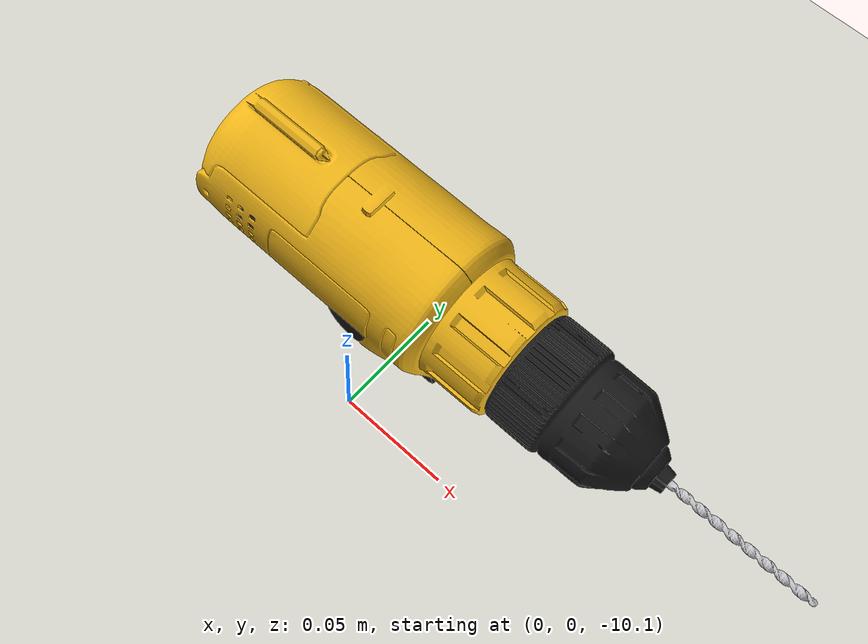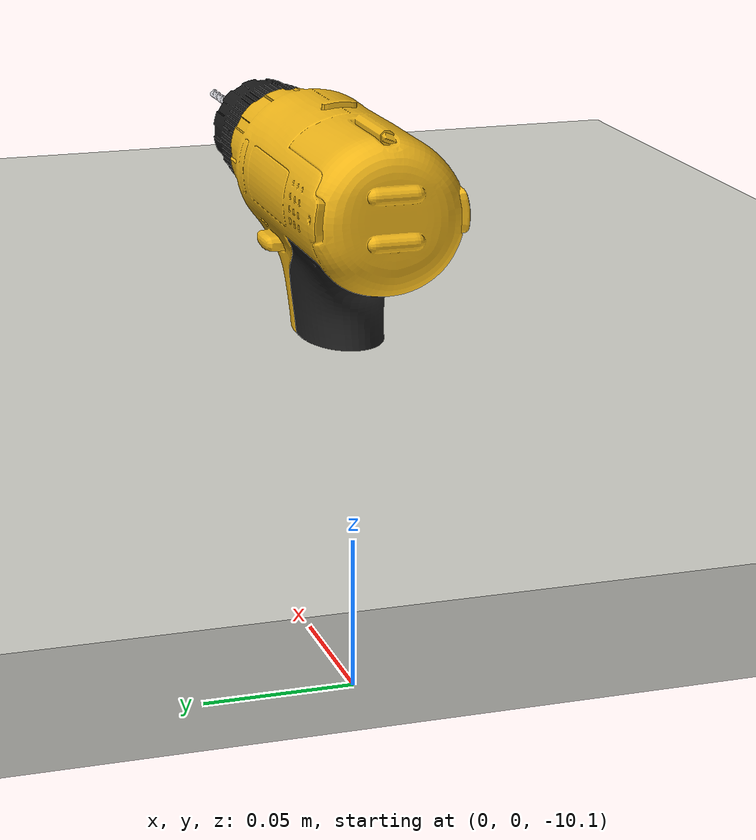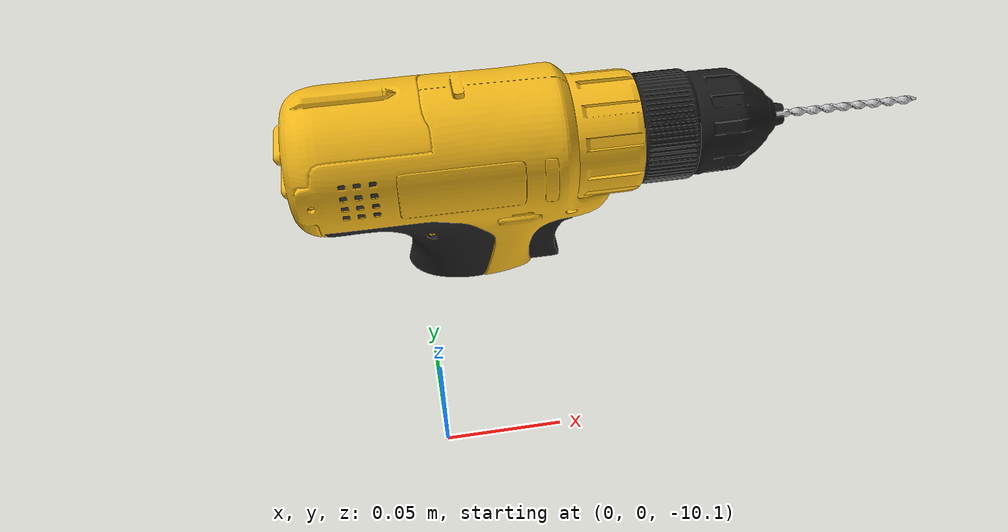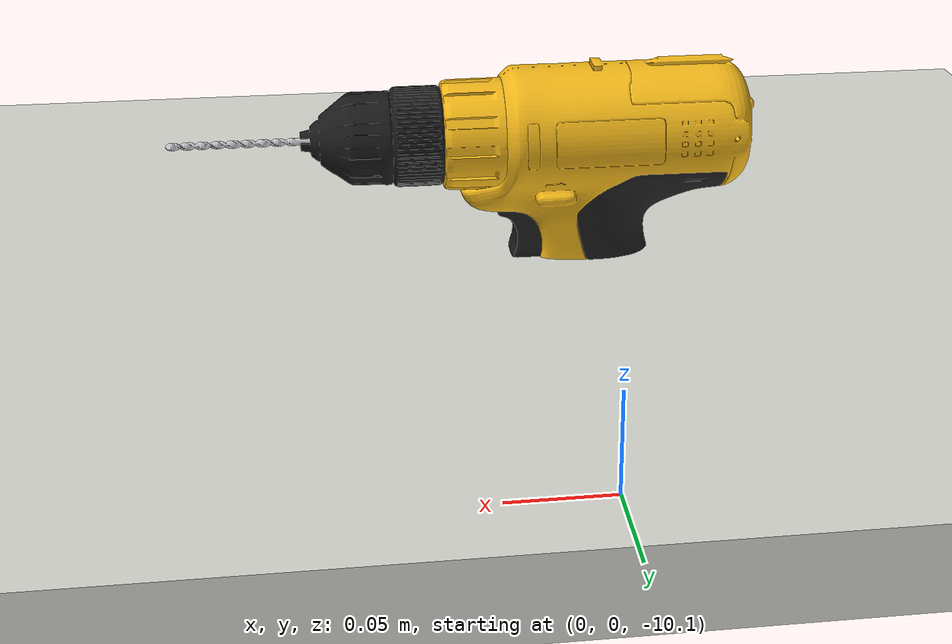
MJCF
<!-- GENERADO por taladro/preparar_taladro.py — no editar a mano (vuelve a generarlo). -->
<mujoco>
  <asset>
    <mesh name="taladro_cuerpo"      file="/piezas/cuerpo.obj"/>
    <mesh name="taladro_empunadura"  file="piezas/empunadura.obj"/>
    <mesh name="taladro_bateria"     file="piezas/bateria.obj"/>
    <mesh name="taladro_portabrocas" file="portabrocas.obj"/>
    <mesh name="taladro_broca"       file="piezas/broca.obj"/>
  </asset>

  <worldbody>
    <!-- Techo donde se taladra (lo coloca [4] a la altura adecuada) -->
    <body name="taladro_techo" mocap="true" pos="0 0 -10">
      <geom name="taladro_techo_geom" type="box" size="0.60 0.60 0.015"
            rgba="0.85 0.85 0.82 1" friction="1 0.01 0.001"
            contype="1" conaffinity="1" group="0"/>
    </body>

    <!-- Peana donde espera el taladro (de pie, apoyado en la batería) -->
    <body name="taladro_soporte" mocap="true" pos="0 0 -10">
      <geom name="taladro_soporte_geom" type="box" size="0.08 0.08 0.01"
            rgba="0.35 0.30 0.25 1" friction="1 0.01 0.001"
            contype="1" conaffinity="1" group="0"/>
    </body>

    <!-- El taladro -->
    <body name="taladro" pos="0 0 -10">
      <freejoint name="taladro_libre"/>
      <inertial pos="0.0140 0.0001 0.0079" mass="0.6"
                diaginertia="0.0025 0.0030 0.0012"/>
      <!-- visual (no choca) -->
      <geom type="mesh" mesh="taladro_cuerpo"     rgba="0.95 0.72 0.10 1"     contype="0" conaffinity="0" group="2" mass="0"/>
      <geom type="mesh" mesh="taladro_empunadura" rgba="0.12 0.12 0.12 1" contype="0" conaffinity="0" group="2" mass="0"/>
      <geom type="mesh" mesh="taladro_bateria"    rgba="0.25 0.25 0.27 1"    contype="0" conaffinity="0" group="2" mass="0"/>
      <!-- colisiones simples (invisibles, grupo 3) -->
      <geom name="taladro_col_empunadura" type="capsule" fromto="0.0054 0.0001 -0.0406 -0.0048 -0.0001 0.0364" size="0.0182"
            contype="1" conaffinity="1" group="3" rgba="1 0 0 0.3" condim="4" friction="1.5 0.02 0.001" mass="0"/>
      <geom name="taladro_col_cabeza" type="capsule" fromto="-0.0256 0.0001 0.0663 0.0682 0.0001 0.0663" size="0.0193"
            contype="1" conaffinity="1" group="3" rgba="1 0 0 0.3" condim="4" friction="1.2 0.02 0.001" mass="0"/>
      <geom name="taladro_col_bateria" type="box" pos="0.0051 0.0001 -0.0636" size="0.0215 0.0170 0.0167"
            contype="1" conaffinity="1" group="3" rgba="1 0 0 0.3" condim="4" friction="1.2 0.02 0.001" mass="0"/>

      <!-- Portabrocas + broca: GIRAN alrededor del eje de la broca -->
      <body name="taladro_rotor" pos="0.0720 0.0001 0.0625">
        <joint name="taladro_giro" type="hinge" axis="1 0 0" damping="0.0005"/>
        <inertial pos="0.0260 0 0" mass="0.02" diaginertia="0.000005 0.00001 0.00001"/>
        <geom type="mesh" mesh="taladro_portabrocas" rgba="0.10 0.10 0.10 1" contype="0" conaffinity="0" group="2" mass="0"/>
        <geom type="mesh" mesh="taladro_broca"       rgba="0.78 0.78 0.80 1"       contype="0" conaffinity="0" group="2" mass="0"/>
        <geom name="taladro_col_portabrocas" type="capsule" fromto="0.004 0 0 0.0336 0 0"
              size="0.0185" contype="1" conaffinity="1" group="3" rgba="1 0 0 0.3" condim="4" mass="0"/>
        <!-- punta de la broca: es la que "toca" el techo -->
        <geom name="taladro_punta" type="sphere" pos="0.1008 0 0" size="0.004"
              contype="1" conaffinity="1" group="3" rgba="1 0 0 0.6" condim="3" mass="0"/>
      </body>
    </body>

    <!-- Marcas de los agujeros hechos (visuales) -->
    <body name="taladro_agujero_0" mocap="true" pos="0 0 -10">
      <geom type="cylinder" size="0.006 0.0015" rgba="0.05 0.05 0.05 1"
            contype="0" conaffinity="0" group="2" mass="0"/>
    </body>
    <body name="taladro_agujero_1" mocap="true" pos="0 0 -10">
      <geom type="cylinder" size="0.006 0.0015" rgba="0.05 0.05 0.05 1"
            contype="0" conaffinity="0" group="2" mass="0"/>
    </body>
    <body name="taladro_agujero_2" mocap="true" pos="0 0 -10">
      <geom type="cylinder" size="0.006 0.0015" rgba="0.05 0.05 0.05 1"
            contype="0" conaffinity="0" group="2" mass="0"/>
    </body>
    <body name="taladro_agujero_3" mocap="true" pos="0 0 -10">
      <geom type="cylinder" size="0.006 0.0015" rgba="0.05 0.05 0.05 1"
            contype="0" conaffinity="0" group="2" mass="0"/>
    </body>
    <body name="taladro_agujero_4" mocap="true" pos="0 0 -10">
      <geom type="cylinder" size="0.006 0.0015" rgba="0.05 0.05 0.05 1"
            contype="0" conaffinity="0" group="2" mass="0"/>
    </body>
    <body name="taladro_agujero_5" mocap="true" pos="0 0 -10">
      <geom type="cylinder" size="0.006 0.0015" rgba="0.05 0.05 0.05 1"
            contype="0" conaffinity="0" group="2" mass="0"/>
    </body>
    <body name="taladro_agujero_6" mocap="true" pos="0 0 -10">
      <geom type="cylinder" size="0.006 0.0015" rgba="0.05 0.05 0.05 1"
            contype="0" conaffinity="0" group="2" mass="0"/>
    </body>
    <body name="taladro_agujero_7" mocap="true" pos="0 0 -10">
      <geom type="cylinder" size="0.006 0.0015" rgba="0.05 0.05 0.05 1"
            contype="0" conaffinity="0" group="2" mass="0"/>
    </body>
  </worldbody>
</mujoco>
